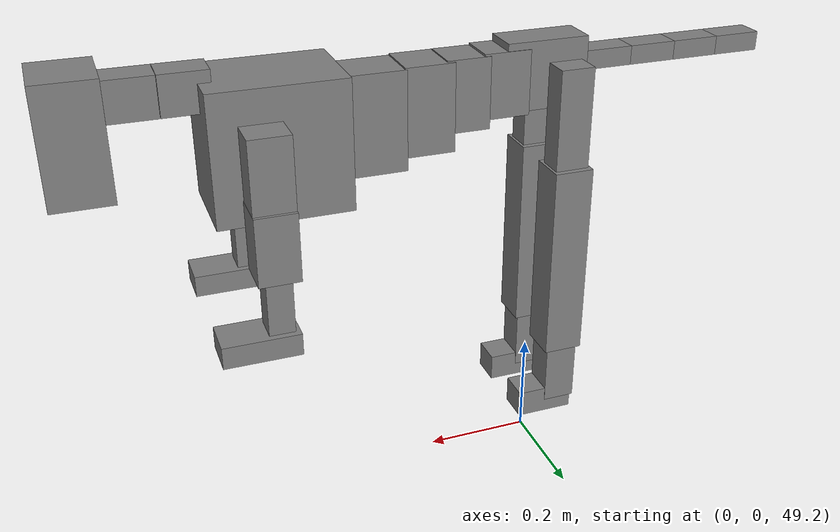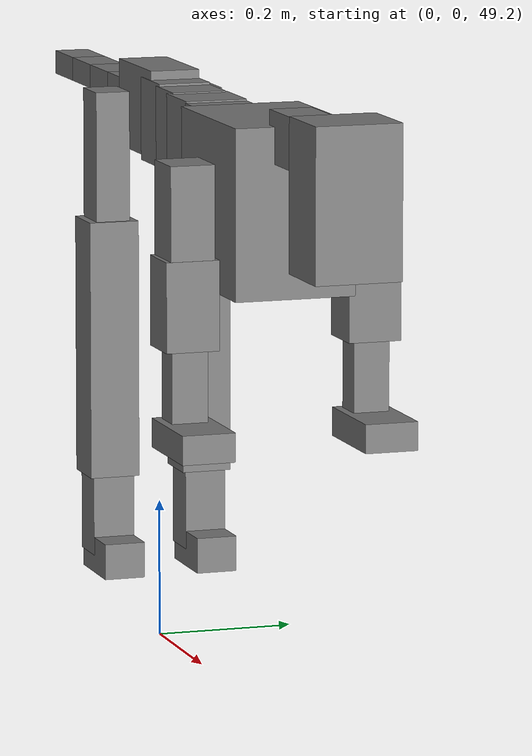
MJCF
<mujoco model="dog">

    <default>
        <joint armature="0.02" stiffness="1" damping="0.2" limited="true"/>
        <geom condim="3" friction="1 0.05 0.05" margin="0.01"/>
        <motor ctrllimited="true" ctrlrange="-1.0 1.0" forcelimited="true" gear="50"/>
    </default>

    <compiler inertiafromgeom="true" angle="radian"/>

    <option timestep="0.016" iterations="50" tolerance="1e-10" solver="Newton" jacobian="dense" cone="pyramidal"/>

    <size nconmax="20000" njmax="60000" nstack="5000000"/>
    <visual>
        <map force="0.1" zfar="30"/>
        <rgba haze="0.15 0.25 0.35 1"/>
        <quality shadowsize="2048"/>
        <global offwidth="800" offheight="800"/>
    </visual>

    <asset>
        <texture type="skybox" builtin="gradient" rgb1="0.3 0.5 0.7" rgb2="0 0 0" width="512" height="512"/>
        <texture name="texplane" type="2d" builtin="checker" rgb1=".2 .3 .4" rgb2=".1 0.15 0.2" width="512" height="512"
                 mark="cross" markrgb=".8 .8 .8"/>
        <texture name="texgeom" type="cube" builtin="flat" mark="cross" width="127" height="1278" rgb1="0.8 0.6 0.4"
                 rgb2="0.8 0.6 0.4" markrgb="1 1 1" random="0.01"/>

        <material name="matplane" reflectance="0.3" texture="texplane" texrepeat="1 1" texuniform="true"/>
        <material name="matgeom" texture="texgeom" texuniform="true" rgba="0.8 0.6 .4 1"/>
    </asset>

    <worldbody>
        <geom name="floor" pos="0 0 0" size="0 0 .25" type="plane" material="matplane" condim="3"/>

        <light directional="false" diffuse=".2 .2 .2" specular="0 0 0" pos="0 0 5" dir="0 0 -1" castshadow="false"/>
        <light mode="targetbodycom" target="torso" directional="false" diffuse=".8 .8 .8" specular="0.3 0.3 0.3"
               pos="0 0 4.0" dir="0 0 -1"/>

        <body name="root" pos="0 0 50">
            <freejoint name="root_1"/>
            <geom type="box" pos="0 0 -0.02" size="0.0774  0.0358  0.063" density="2030"/>

            <body name="spine1" pos="0.054 0 0">
                <joint name="spine1_y" axis="0 1 0" range="0 0.7" limited="true"/>
                <geom type="box" pos="0.02375 0 -0.03" size="0.04375  0.0375  0.05985" density="2030"/>

                <body name="spine2" pos="0.0612 0 0">
                    <joint name="spine2_y" axis="0 1 0" range="-0.15 0.15" limited="true"/>
                    <geom type="box" pos="0.03555  0  -0.04" size="0.04055  0.039  0.06615" density="2030"/>

                    <body name="spine3" pos="0.0730 0 0">
                        <joint name="spine3_y" axis="0 1 0" range="-0.15 0.15" limited="true"/>
                        <geom type="box" pos="0.03555  0  -0.057" size="0.04555  0.0445  0.081" density="2030"/>

                        <body name="spine4" pos="0.0780 0 0">
                            <joint name="spine4_y" axis="0 1 0" range="-0.15 0.15" limited="true"/>
                            <geom type="box" pos="0.05265  0  -0.07" size="0.05265  0.045  0.09135" density="2030"/>

                            <body name="torso" pos="0.1082 0 0">
                                <joint name="torso_y" axis="0 1 0" range="-0.15 0.15" limited="true"/>
                                <geom type="box" pos="0.11925  0  -0.085" size="0.11925  0.085  0.11745"
                                      density="2030"/>

                                <body name="neck1" pos="0.2160  0   0.0180">
                                    <joint name="neck1_y" axis="0 1 0" range="-1.2  -1" limited="true"/>
                                    <geom type="box" pos="0.0423  0  0" size="0.0423  0.03  0.036" density="2325"/>

                                    <body name="neck2" pos="0.0853  0  0">
                                        <joint name="neck2_y" axis="0 1 0" range="0.1  0" limited="true"/>
                                        <geom type="box" pos="0.0423  0  0" size="0.0423  0.03  0.036" density="2325"/>

                                        <body name="head" pos="0.0853  0  0">
                                            <joint name="head_y" axis="0 1 0" range="-0.3  -0.2" limited="true"/>
                                            <geom type="box" pos="0.0531  0  -0.055" size="0.0531  0.06  0.1044"
                                                  density="4030"/>

                                        </body>
                                    </body>
                                </body>

                                <body name="front_shoulder" pos="0.156  0   -0.0480">
                                    <joint name="front_shoulder_y" axis="0 1 0" range="-1 1.5" limited="true"/>
                                    <geom type="box" pos="0 0.13 -0.0517" size="0.0365  0.0312  0.0783" density="1158"/>
                                    <geom type="box" pos="0 -0.13 -0.0517" size="0.0365  0.0312  0.0783"
                                          density="1158"/>

                                    <body name="front_elbow" pos="0  0  -0.1034">
                                        <joint name="front_elbow_y" axis="0 1 0" range="-2 0" limited="true"/>
                                        <geom type="box" pos="0 0.13 -0.0621" size="0.0367  0.0375  0.0621"
                                              density="1081"/>
                                        <geom type="box" pos="0 -0.13 -0.0621" size="0.0367  0.0375  0.0621"
                                              density="1081"/>

                                        <body name="front_wrist" pos="0  0  -0.1241">
                                            <joint name="front_wrist_y" axis="0 1 0" range="-0.2 0" limited="true"/>
                                            <geom type="box" pos="0 0.13 -0.0574" size="0.0230  0.0255  0.0705"
                                                  density="1664"/>
                                            <geom type="box" pos="0 -0.13 -0.0574" size="0.0230  0.0255  0.0705"
                                                  density="1664"/>

                                            <body name="front_finger_end" pos="0  0  -0.1148">
                                                <joint name="front_finger_y" axis="0 1 0" range="-0.4 1"
                                                       limited="true"/>
                                                <geom type="box" pos="0.0375  0.13  -0.0051"
                                                      size="0.0688  0.0375  0.0201" density="1515"/>
                                                <geom type="box" pos="0.0375  -0.13  -0.0051"
                                                      size="0.0688  0.0375  0.0201" density="1515"/>

                                            </body>

                                        </body>
                                    </body>
                                </body>

                            </body>
                        </body>
                    </body>
                </body>
            </body>

            <body name="back_hip" pos="-0.03 0 -0.018">
                <joint name="back_hip_y" axis="0 1 0" range="-1.5 0.3" limited="true"/>
                <geom type="box" pos="0 0.07 -0.0905" size="0.0318  0.0250  0.1133" density="1154"/>
                <geom type="box" pos="0 -0.07 -0.0905" size="0.0318  0.0250  0.1133" density="1154"/>

                <body name="back_knee" pos="0  0  -0.1810">
                    <joint name="back_knee_y" axis="0 1 0" range="0 2.8" limited="true"/>
                    <geom type="box" pos="0 0.07 -0.1722" size="0.0370  0.0365  0.1878" density="1227"/>
                    <geom type="box" pos="0 -0.07 -0.1722" size="0.0370  0.0365  0.1878" density="1227"/>

                    <body name="back_ankle" pos="0  0  -0.3445">
                        <joint name="back_ankle_y" axis="0 1 0" range="-2.2 0" limited="true"/>
                        <geom type="box" pos="0 0.07 -0.0599" size="0.0305  0.0305  0.0712" density="1284"/>
                        <geom type="box" pos="0 -0.07 -0.0599" size="0.0305  0.0305  0.0712" density="1284"/>

                        <body name="back_toe_end" pos="0  0  -0.1199">
                            <joint name="back_toe_y" axis="0 1 0" range="-0.4 1" limited="true"/>
                            <geom type="box" pos="0.0298  0.07  -0.0109" size="0.0546  0.0298  0.0259" density="1515"/>
                            <geom type="box" pos="0.0298  -0.07  -0.0109" size="0.0546  0.0298  0.0259" density="1515"/>

                        </body>
                    </body>
                </body>
            </body>

            <body name="tail1" pos="-0.074 0 -0.006">
                <joint name="tail1_y" axis="0 1 0" range="-0.2 0.2" limited="true"/>
                <geom type="box" pos="-0.0536  0  0" size="0.045  0.025  0.0175" density="1587"/>

                <body name="tail2" pos="-0.09 0 0">
                    <joint name="tail2_y" axis="0 1 0" range="-0.2 0.2" limited="true"/>
                    <geom type="box" pos="-0.0536  0  0" size="0.045  0.025  0.0175" density="1587"/>

                    <body name="tail3" pos="-0.09 0 0">
                        <joint name="tail3_y" axis="0 1 0" range="-0.2 0.2" limited="true"/>
                        <geom type="box" pos="-0.0536  0  0" size="0.045  0.025  0.0175" density="1587"/>

                        <body name="tail4" pos="-0.09 0 0">
                            <joint name="tail4_y" axis="0 1 0" range="-0.2 0.2" limited="true"/>
                            <geom type="box" pos="-0.0536  0  0" size="0.045  0.025  0.0175" density="1587"/>

                        </body>
                    </body>
                </body>
            </body>
        </body>
    </worldbody>

    <actuator>
        <motor joint="spine1_y" forcerange="-150 150     "/>
        <motor joint="spine2_y" forcerange="-150 150     "/>
        <motor joint="spine3_y" forcerange="-150 150     "/>
        <motor joint="spine4_y" forcerange="-150 150     "/>
        <motor joint="torso_y" forcerange="-150 150     "/>
        <motor joint="neck1_y" forcerange="-100 100       "/>
        <motor joint="neck2_y" forcerange="-100 100       "/>
        <motor joint="head_y" forcerange="-150 150       "/>
        <motor joint="front_shoulder_y" forcerange="-199.34 108.55"/>
        <motor joint="front_elbow_y" forcerange="-179.74 192.89"/>
        <motor joint="front_wrist_y" forcerange="-131.71 72.52"/>
        <motor joint="front_finger_y" forcerange="-81.17 79.06"/>
        <motor joint="back_hip_y" forcerange="-216.92 316.09"/>
        <motor joint="back_knee_y" forcerange="-360.96 369.57"/>
        <motor joint="back_angle_y" forcerange="-241.00 146.72"/>
        <motor joint="back_toe_y" forcerange="-85.92 72.31"/>
        <motor joint="tail1_y" forcerange="-50 50     "/>
        <motor joint="tail2_y" forcerange="-50 50     "/>
        <motor joint="tail3_y" forcerange="-50 50     "/>
        <motor joint="tail4_y" forcerange="-50 50     "/>
    </actuator>
</mujoco>
